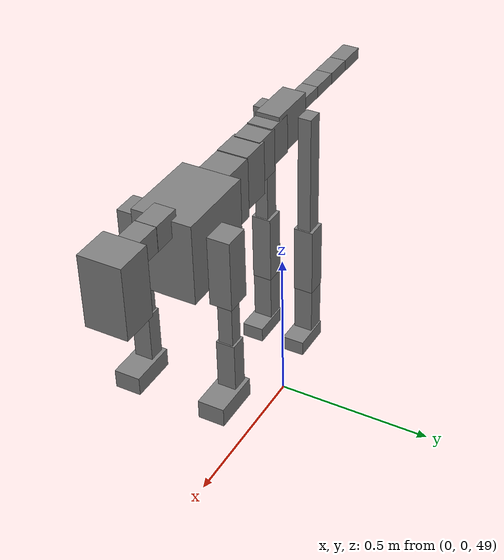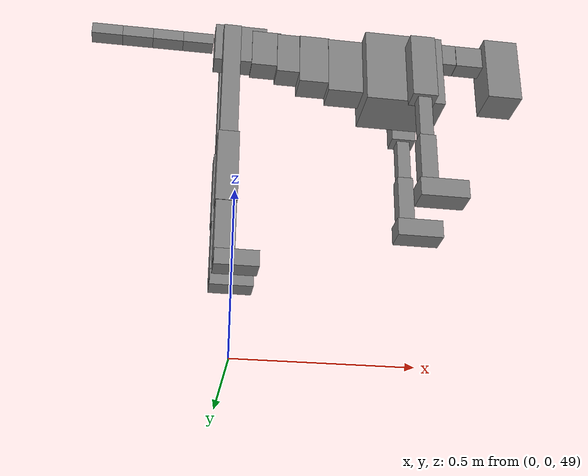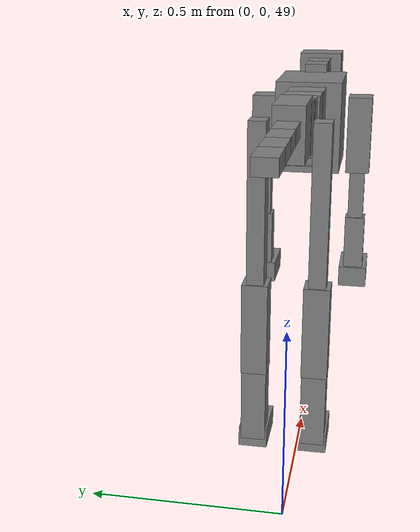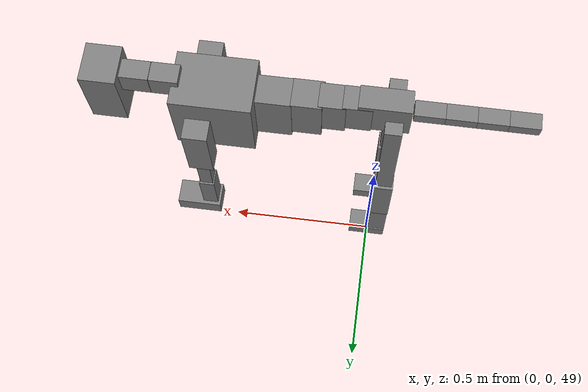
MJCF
<mujoco model="dog">

    <default>
        <joint armature="0.02" stiffness="1" damping="0.2" limited="true"/>
        <geom condim="3" friction="1 0.05 0.05" margin="0.01"/>
        <motor ctrllimited="true" ctrlrange="-1.0 1.0" forcelimited="true" gear="50"/>
    </default>

    <compiler inertiafromgeom="true" angle="radian"/>

    <option timestep="0.016" iterations="50" tolerance="1e-10" solver="Newton" jacobian="dense" cone="pyramidal"/>

    <size nconmax="20000" njmax="60000" nstack="5000000"/>
    <visual>
        <map force="0.1" zfar="30"/>
        <rgba haze="0.15 0.25 0.35 1"/>
        <quality shadowsize="2048"/>
        <global offwidth="800" offheight="800"/>
    </visual>

    <asset>
        <texture type="skybox" builtin="gradient" rgb1="0.3 0.5 0.7" rgb2="0 0 0" width="512" height="512"/>
        <texture name="texplane" type="2d" builtin="checker" rgb1=".2 .3 .4" rgb2=".1 0.15 0.2" width="512" height="512"
                 mark="cross" markrgb=".8 .8 .8"/>
        <texture name="texgeom" type="cube" builtin="flat" mark="cross" width="127" height="1278" rgb1="0.8 0.6 0.4"
                 rgb2="0.8 0.6 0.4" markrgb="1 1 1" random="0.01"/>

        <material name="matplane" reflectance="0.3" texture="texplane" texrepeat="1 1" texuniform="true"/>
        <material name="matgeom" texture="texgeom" texuniform="true" rgba="0.8 0.6 .4 1"/>
    </asset>

    <worldbody>
        <geom name="floor" pos="0 0 0" size="0 0 .25" type="plane" material="matplane" condim="3"/>

        <light directional="false" diffuse=".2 .2 .2" specular="0 0 0" pos="0 0 5" dir="0 0 -1" castshadow="false"/>
        <light mode="targetbodycom" target="torso" directional="false" diffuse=".8 .8 .8" specular="0.3 0.3 0.3"
               pos="0 0 4.0" dir="0 0 -1"/>

        <body name="root" pos="0 0 50">
            <freejoint name="root_1"/>
            <geom type="box" pos="0 0 -0.02" size="0.0774  0.0358  0.063" density="2030"/>

            <body name="spine1" pos="0.054 0 0">
                <joint name="spine1_y" axis="0 1 0" range="0 0.7" limited="true"/>
                <geom type="box" pos="0.02375 0 -0.03" size="0.04375  0.0375  0.05985" density="2030"/>

                <body name="spine2" pos="0.0612 0 0">
                    <joint name="spine2_y" axis="0 1 0" range="-0.15 0.15" limited="true"/>
                    <geom type="box" pos="0.03555  0  -0.04" size="0.04055  0.039  0.06615" density="2030"/>

                    <body name="spine3" pos="0.0730 0 0">
                        <joint name="spine3_y" axis="0 1 0" range="-0.15 0.15" limited="true"/>
                        <geom type="box" pos="0.03555  0  -0.057" size="0.04555  0.0445  0.081" density="2030"/>

                        <body name="spine4" pos="0.0780 0 0">
                            <joint name="spine4_y" axis="0 1 0" range="-0.15 0.15" limited="true"/>
                            <geom type="box" pos="0.05265  0  -0.07" size="0.05265  0.045  0.09135" density="2030"/>

                            <body name="torso" pos="0.1082 0 0">
                                <joint name="torso_y" axis="0 1 0" range="-0.15 0.15" limited="true"/>
                                <geom type="box" pos="0.11925  0  -0.085" size="0.11925  0.085  0.11745"
                                      density="2030"/>

                                <body name="neck1" pos="0.2160  0   0.0180">
                                    <joint name="neck1_y" axis="0 1 0" range="-1.2  -1" limited="true"/>
                                    <geom type="box" pos="0.0423  0  0" size="0.0423  0.03  0.036" density="2325"/>

                                    <body name="neck2" pos="0.0853  0  0">
                                        <joint name="neck2_y" axis="0 1 0" range="0.1  0" limited="true"/>
                                        <geom type="box" pos="0.0423  0  0" size="0.0423  0.03  0.036" density="2325"/>

                                        <body name="head" pos="0.0853  0  0">
                                            <joint name="head_y" axis="0 1 0" range="-0.3  -0.2" limited="true"/>
                                            <geom type="box" pos="0.0531  0  -0.055" size="0.0531  0.06  0.1044"
                                                  density="4030"/>

                                        </body>
                                    </body>
                                </body>

                                <body name="front_shoulder" pos="0.156  0   -0.0480">
                                    <joint name="front_shoulder_y" axis="0 1 0" range="-1 1.5" limited="true"/>
                                    <geom type="box" pos="0 0.13 -0.0759" size="0.0372  0.0318  0.1025" density="1158"/>
                                    <geom type="box" pos="0 -0.13 -0.0759" size="0.0372  0.0318  0.1025"
                                          density="1158"/>

                                    <body name="front_elbow" pos="0  0  -0.1518">
                                        <joint name="front_elbow_y" axis="0 1 0" range="-2 0" limited="true"/>
                                        <geom type="box" pos="0 0.13 -0.0854" size="0.0200  0.0205  0.0854"
                                              density="1081"/>
                                        <geom type="box" pos="0 -0.13 -0.0854" size="0.0200  0.0205  0.0854"
                                              density="1081"/>

                                        <body name="front_wrist" pos="0  0  -0.1708">
                                            <joint name="front_wrist_y" axis="0 1 0" range="-0.2 0" limited="true"/>
                                            <geom type="box" pos="0 0.13 -0.0734" size="0.0240  0.0267  0.0865"
                                                  density="1664"/>
                                            <geom type="box" pos="0 -0.13 -0.0734" size="0.0240  0.0267  0.0865"
                                                  density="1664"/>

                                            <body name="front_finger_end" pos="0  0  -0.1468">
                                                <joint name="front_finger_y" axis="0 1 0" range="-0.4 1"
                                                       limited="true"/>
                                                <geom type="box" pos="0.0381  0.13  -0.0129"
                                                      size="0.0699  0.0381  0.0279" density="1515"/>
                                                <geom type="box" pos="0.0381  -0.13  -0.0129"
                                                      size="0.0699  0.0381  0.0279" density="1515"/>

                                            </body>

                                        </body>
                                    </body>
                                </body>

                            </body>
                        </body>
                    </body>
                </body>
            </body>

            <body name="back_hip" pos="-0.03 0 -0.018">
                <joint name="back_hip_y" axis="0 1 0" range="-1.5 0.3" limited="true"/>
                <geom type="box" pos="0 0.07 -0.1820" size="0.0256  0.0201  0.2048" density="1154"/>
                <geom type="box" pos="0 -0.07 -0.1820" size="0.0256  0.0201  0.2048" density="1154"/>

                <body name="back_knee" pos="0  0  -0.3640">
                    <joint name="back_knee_y" axis="0 1 0" range="0 2.8" limited="true"/>
                    <geom type="box" pos="0 0.07 -0.0934" size="0.0303  0.0299  0.1089" density="1227"/>
                    <geom type="box" pos="0 -0.07 -0.0934" size="0.0303  0.0299  0.1089" density="1227"/>

                    <body name="back_ankle" pos="0  0  -0.1868">
                        <joint name="back_ankle_y" axis="0 1 0" range="-2.2 0" limited="true"/>
                        <geom type="box" pos="0 0.07 -0.0882" size="0.0286  0.0286  0.0994" density="1284"/>
                        <geom type="box" pos="0 -0.07 -0.0882" size="0.0286  0.0286  0.0994" density="1284"/>

                        <body name="back_toe_end" pos="0  0  -0.1764">
                            <joint name="back_toe_y" axis="0 1 0" range="-0.4 1" limited="true"/>
                            <geom type="box" pos="0.0333  0.07  -0.0083" size="0.0610  0.0333  0.0233" density="1515"/>
                            <geom type="box" pos="0.0333  -0.07  -0.0083" size="0.0610  0.0333  0.0233" density="1515"/>

                        </body>
                    </body>
                </body>
            </body>

            <body name="tail1" pos="-0.074 0 -0.006">
                <joint name="tail1_y" axis="0 1 0" range="-0.2 0.2" limited="true"/>
                <geom type="box" pos="-0.0536  0  0" size="0.045  0.025  0.0175" density="1587"/>

                <body name="tail2" pos="-0.09 0 0">
                    <joint name="tail2_y" axis="0 1 0" range="-0.2 0.2" limited="true"/>
                    <geom type="box" pos="-0.0536  0  0" size="0.045  0.025  0.0175" density="1587"/>

                    <body name="tail3" pos="-0.09 0 0">
                        <joint name="tail3_y" axis="0 1 0" range="-0.2 0.2" limited="true"/>
                        <geom type="box" pos="-0.0536  0  0" size="0.045  0.025  0.0175" density="1587"/>

                        <body name="tail4" pos="-0.09 0 0">
                            <joint name="tail4_y" axis="0 1 0" range="-0.2 0.2" limited="true"/>
                            <geom type="box" pos="-0.0536  0  0" size="0.045  0.025  0.0175" density="1587"/>

                        </body>
                    </body>
                </body>
            </body>
        </body>
    </worldbody>

    <actuator>
        <motor joint="spine1_y" forcerange="-150 150     "/>
        <motor joint="spine2_y" forcerange="-150 150     "/>
        <motor joint="spine3_y" forcerange="-150 150     "/>
        <motor joint="spine4_y" forcerange="-150 150     "/>
        <motor joint="torso_y" forcerange="-150 150     "/>
        <motor joint="neck1_y" forcerange="-100 100       "/>
        <motor joint="neck2_y" forcerange="-100 100       "/>
        <motor joint="head_y" forcerange="-150 150       "/>
        <motor joint="front_shoulder_y" forcerange="-183.30 128.51"/>
        <motor joint="front_elbow_y" forcerange="-106.15 142.72"/>
        <motor joint="front_wrist_y" forcerange="-120.99 92.56"/>
        <motor joint="front_finger_y" forcerange="-87.92 75.41"/>
        <motor joint="back_hip_y" forcerange="-266.46 200.92"/>
        <motor joint="back_knee_y" forcerange="-339.73 295.03"/>
        <motor joint="back_angle_y" forcerange="-176.81 181.55"/>
        <motor joint="back_toe_y" forcerange="-88.27 98.06"/>
        <motor joint="tail1_y" forcerange="-50 50     "/>
        <motor joint="tail2_y" forcerange="-50 50     "/>
        <motor joint="tail3_y" forcerange="-50 50     "/>
        <motor joint="tail4_y" forcerange="-50 50     "/>
    </actuator>
</mujoco>
